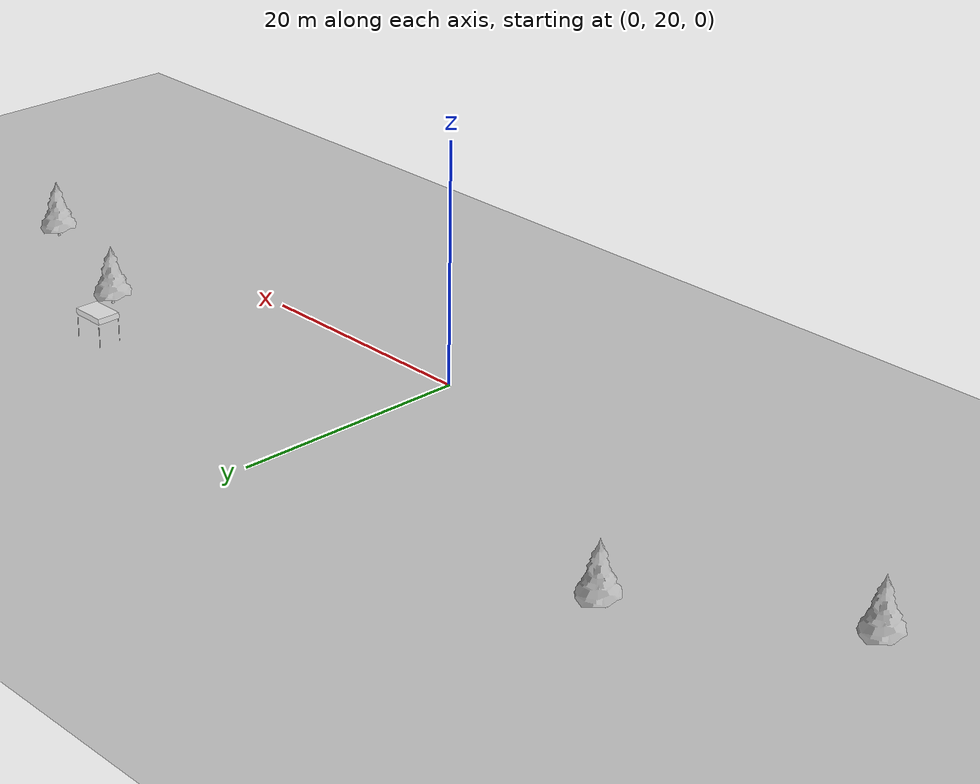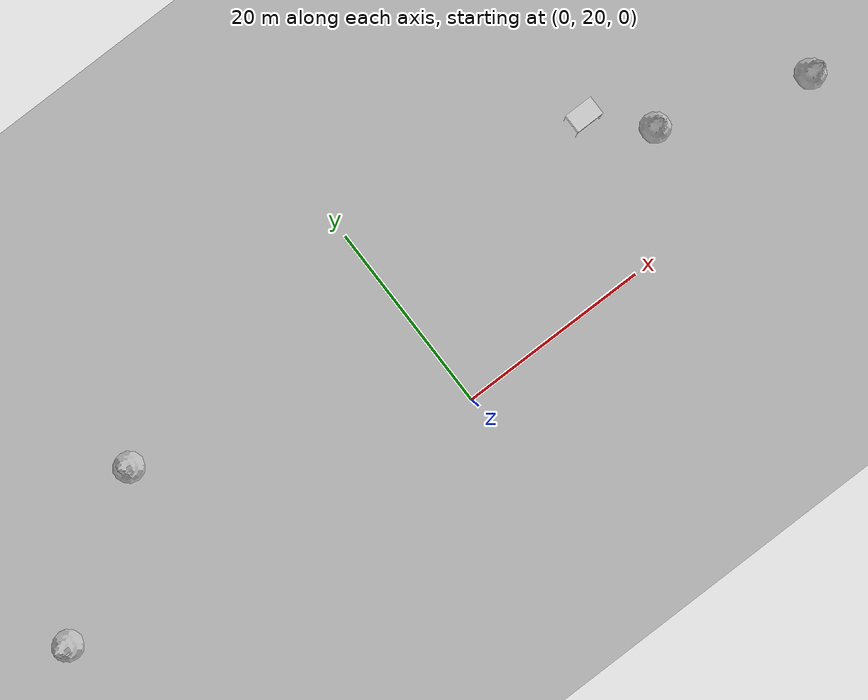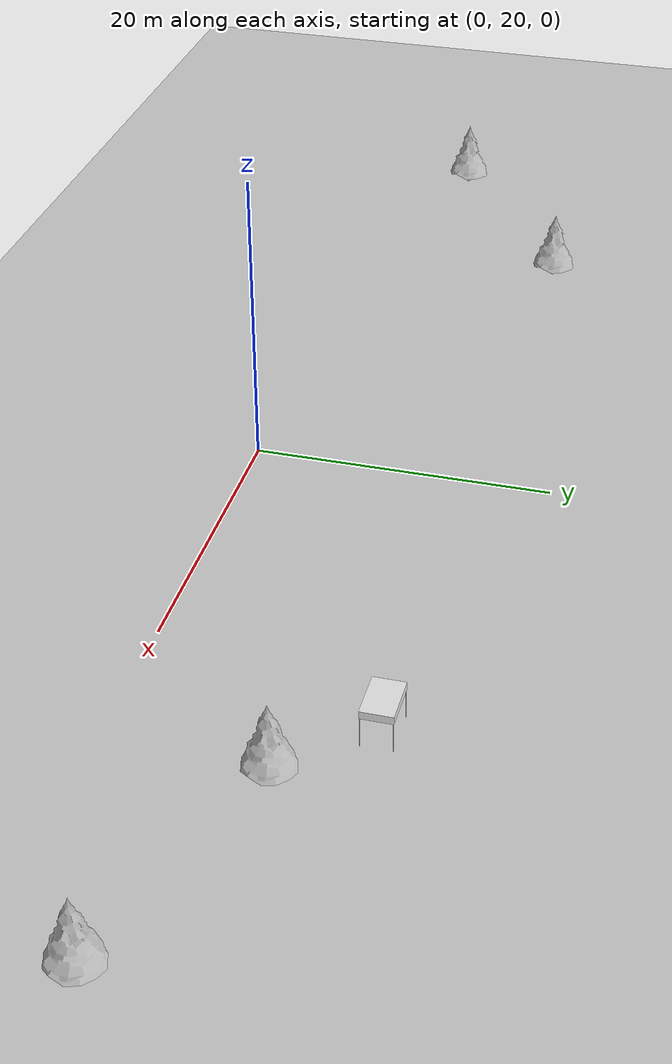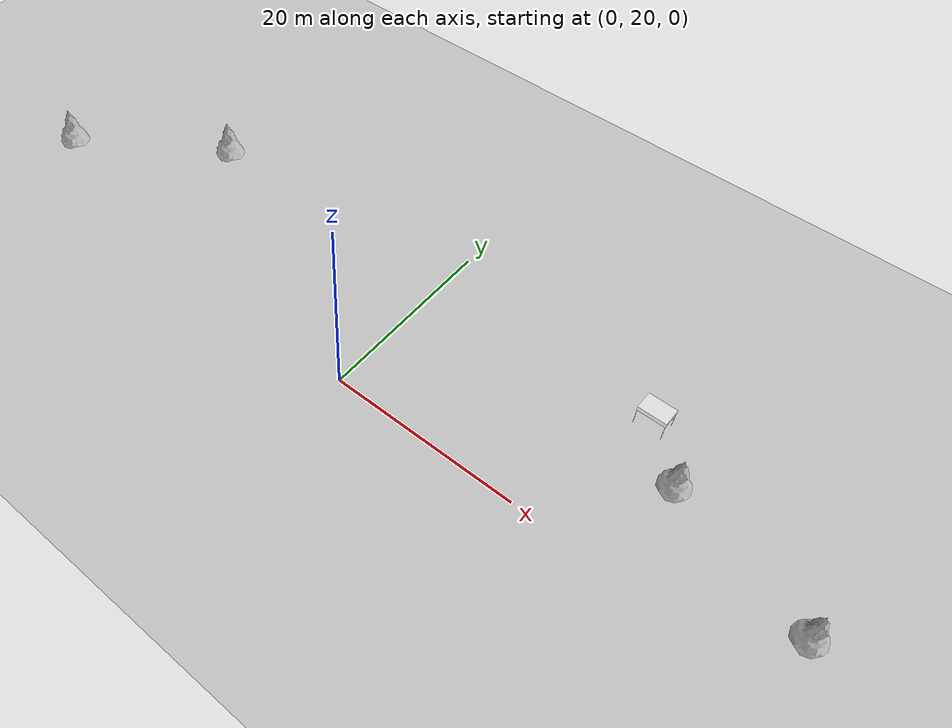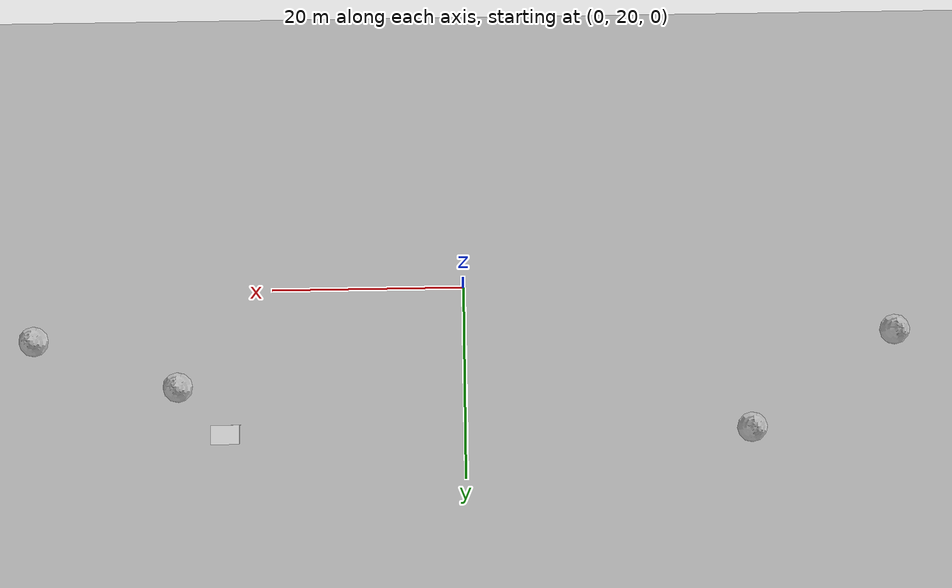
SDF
<sdf version="1.6">
 <world name="small_track">
  <scene><ambient>1.0 1.0 1.0 1.0</ambient><shadows>false</shadows></scene>
  <spherical_coordinates>
   <heading_deg>180</heading_deg>
   <latitude_deg>42.1697</latitude_deg>
   <longitude_deg>-8.6882</longitude_deg>
  </spherical_coordinates>
  <light name="sun" type="directional">
   <pose>0 0 10 0 -0 0</pose>
   <diffuse>0.8 0.8 0.8 1</diffuse>
   <specular>0.1 0.1 0.1 1</specular>
   <attenuation>
    <range>1000</range>
    <constant>0.9</constant>
    <linear>0.01</linear>
    <quadratic>0.001</quadratic>
   </attenuation>
   <direction>-0.5 0.5 -1</direction>
  </light>
  <include><uri>model://eei_parking</uri></include>
  <include><name>folding_tent_1</name><uri>model://folding_tent</uri><pose>25 35 0 0 0 0</pose></include>
  <include><name>pine_tree_1</name><uri>model://pine_tree</uri><pose>30 30 0 0 0 0</pose></include>
  <include><name>pine_tree_2</name><uri>model://pine_tree</uri><pose>-30 35 0 0 0 0</pose></include>
  <include><name>pine_tree_3</name><uri>model://pine_tree</uri><pose>45 25 0 0 0 0</pose></include>
  <include><name>pine_tree_4</name><uri>model://pine_tree</uri><pose>-45 25 0 0 0 0</pose></include>
 </world>
</sdf>

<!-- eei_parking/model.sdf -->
<sdf version="1.5">
  <model name="eei_parking">
    <static>true</static>
    <link name="link">
      <collision name="collision">
        <geometry>
          <plane>
            <normal>0 0 1</normal>
            <size>200 200</size>
          </plane>
        </geometry>
        <surface>
          <friction>
            <ode>
              <mu>100</mu>
              <mu2>50</mu2>
            </ode>
          </friction>
        </surface>
      </collision>
      <visual name="visual">
        <cast_shadows>false</cast_shadows>
        <geometry>
          <plane>
            <normal>0 0 1</normal>
            <size>200 200</size>
          </plane>
        </geometry>
        <material>
          <script>
            <uri>model://eei_parking/materials/scripts</uri>
            <uri>model://eei_parking/materials/textures</uri>
            <name>EEIParking/Image</name>
          </script>
        </material>
      </visual>
    </link>
  </model>
</sdf>

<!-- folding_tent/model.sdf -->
<sdf version="1.6">
  <model name="folding_tent">
    <static>true</static>
    <link name="link">
      <collision name="collision">
        <geometry>
          <box>
            <size>3 2 2.5</size>
          </box>
        </geometry>
      </collision>
      <visual name="leg_1">
        <pose>1.45 0.95 1.0 0 0 0</pose>
        <geometry>
          <cylinder>
            <radius>0.02</radius>
            <length>2.0</length>
          </cylinder>
        </geometry>
        <material>
          <script>
            <uri>file://media/materials/scripts/gazebo.material</uri>
            <name>Gazebo/Grey</name>
          </script>
        </material>
      </visual>
      <visual name="leg_2">
        <pose>-1.45 0.95 1.0 0 0 0</pose>
        <geometry>
          <cylinder>
            <radius>0.02</radius>
            <length>2.0</length>
          </cylinder>
        </geometry>
        <material>
          <script>
            <uri>file://media/materials/scripts/gazebo.material</uri>
            <name>Gazebo/Grey</name>
          </script>
        </material>
      </visual>
      <visual name="leg_3">
        <pose>1.45 -0.95 1.0 0 0 0</pose>
        <geometry>
          <cylinder>
            <radius>0.02</radius>
            <length>2.0</length>
          </cylinder>
        </geometry>
        <material>
          <script>
            <uri>file://media/materials/scripts/gazebo.material</uri>
            <name>Gazebo/Grey</name>
          </script>
        </material>
      </visual>
      <visual name="leg_4">
        <pose>-1.45 -0.95 1.0 0 0 0</pose>
        <geometry>
          <cylinder>
            <radius>0.02</radius>
            <length>2.0</length>
          </cylinder>
        </geometry>
        <material>
          <script>
            <uri>file://media/materials/scripts/gazebo.material</uri>
            <name>Gazebo/Grey</name>
          </script>
        </material>
      </visual>
      <visual name="roof">
        <pose>0 0 2.25 0 0 0</pose>
        <geometry>
          <box>
            <size>3.0 2.0 0.5</size>
          </box>
        </geometry>
        <material>
          <script>
            <uri>file://media/materials/scripts/gazebo.material</uri>
            <name>Gazebo/White</name>
          </script>
        </material>
      </visual>
    </link>
  </model>
</sdf>

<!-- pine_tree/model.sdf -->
<sdf version="1.6">
  <model name="pine_tree">
    <static>true</static>
    <link name="link">
      <collision name="collision">
        <geometry>
          <mesh>
            <uri>file://isr-testbed/pine_tree/meshes/pine_tree.dae</uri>
          </mesh>
        </geometry>
      </collision>
      <visual name="branch">
        <geometry>
          <mesh>
            <uri>file://isr-testbed/pine_tree/meshes/pine_tree.dae</uri>
            <submesh>
              <name>Branch</name>
            </submesh>
          </mesh>
        </geometry>
        <material>
          <script>
            <uri>file://isr-testbed/pine_tree/materials/scripts/</uri>
            <uri>file://isr-testbed/pine_tree/materials/textures/</uri>
            <name>PineTree/Branch</name>
          </script>
        </material>
      </visual>
      <visual name="bark">
        <geometry>
          <mesh>
            <uri>file://isr-testbed/pine_tree/meshes/pine_tree.dae</uri>
            <submesh>
              <name>Bark</name>
            </submesh>
          </mesh>
        </geometry>
        <material>
          <script>
            <uri>file://isr-testbed/pine_tree/materials/scripts/</uri>
            <uri>file://isr-testbed/pine_tree/materials/textures/</uri>
            <name>PineTree/Bark</name>
          </script>
        </material>
      </visual>
    </link>
  </model>
</sdf>
